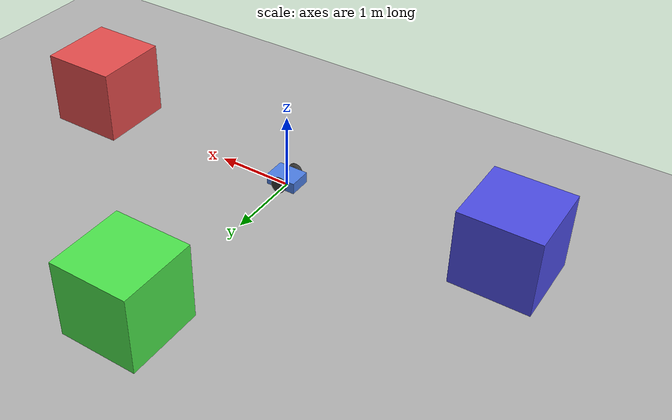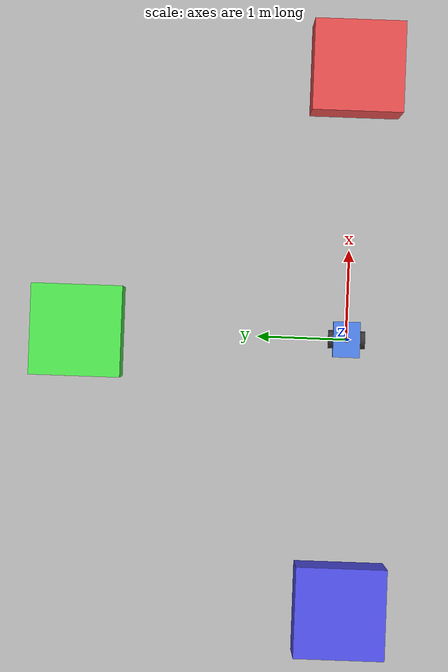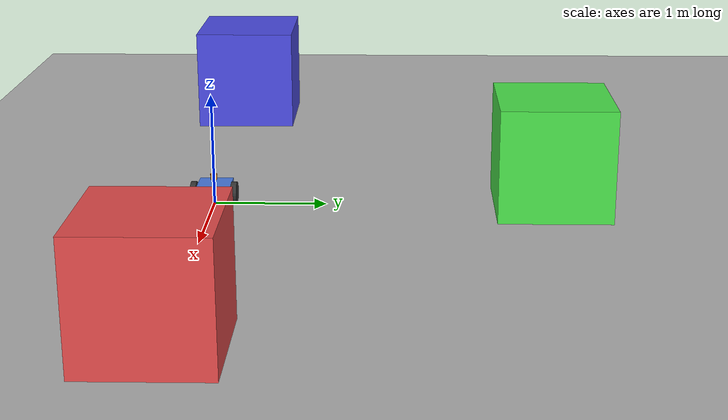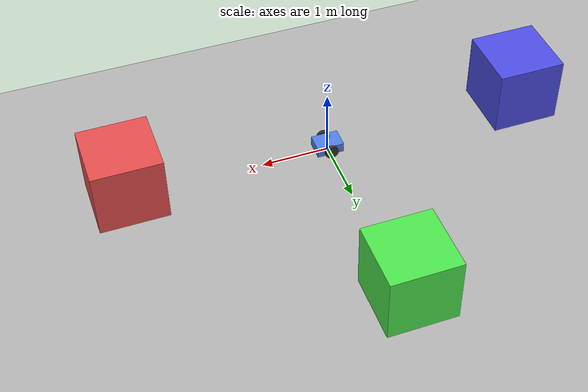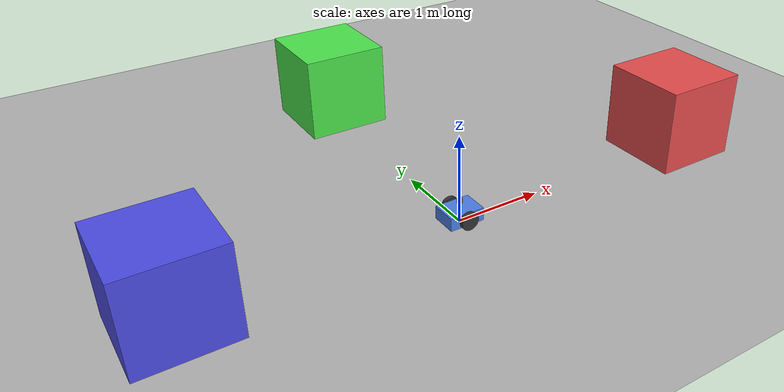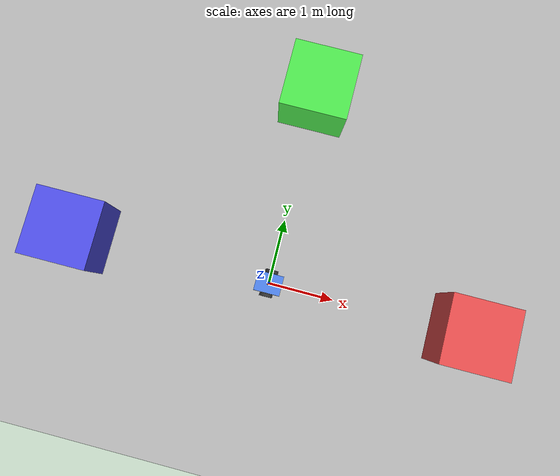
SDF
<?xml version="1.0" ?>
<sdf version="1.8">
  <world name="demo_world">
    <plugin filename="ignition-gazebo-physics-system" name="ignition::gazebo::systems::Physics"/>
    <plugin filename="ignition-gazebo-user-commands-system" name="ignition::gazebo::systems::UserCommands"/>
    <plugin filename="ignition-gazebo-scene-broadcaster-system" name="ignition::gazebo::systems::SceneBroadcaster"/>
    <plugin filename="ignition-gazebo-sensors-system" name="ignition::gazebo::systems::Sensors">
      <render_engine>ogre2</render_engine>
    </plugin>

    <gravity>0 0 -9.8</gravity>

    <light type="directional" name="sun">
      <cast_shadows>true</cast_shadows>
      <pose>0 0 10 0 0 0</pose>
      <diffuse>0.8 0.8 0.8 1</diffuse>
      <specular>0.2 0.2 0.2 1</specular>
      <direction>-0.5 0.1 -0.9</direction>
    </light>

    <model name="ground_plane">
      <static>true</static>
      <link name="link">
        <collision name="collision">
          <geometry>
            <plane>
              <normal>0 0 1</normal>
              <size>20 20</size>
            </plane>
          </geometry>
        </collision>
        <visual name="visual">
          <geometry>
            <plane>
              <normal>0 0 1</normal>
              <size>20 20</size>
            </plane>
          </geometry>
          <material>
            <ambient>0.6 0.6 0.6 1</ambient>
            <diffuse>0.7 0.7 0.7 1</diffuse>
          </material>
        </visual>
      </link>
    </model>

    <!-- 障害物（ナビ視覚化用） -->
    <model name="box1">
      <static>true</static>
      <pose>3 0 0.5 0 0 0</pose>
      <link name="link">
        <collision name="c"><geometry><box><size>1 1 1</size></box></geometry></collision>
        <visual name="v">
          <geometry><box><size>1 1 1</size></box></geometry>
          <material><ambient>0.8 0.2 0.2 1</ambient><diffuse>0.9 0.3 0.3 1</diffuse></material>
        </visual>
      </link>
    </model>
    <model name="box2">
      <static>true</static>
      <pose>0 3 0.5 0 0 0</pose>
      <link name="link">
        <collision name="c"><geometry><box><size>1 1 1</size></box></geometry></collision>
        <visual name="v">
          <geometry><box><size>1 1 1</size></box></geometry>
          <material><ambient>0.2 0.8 0.2 1</ambient><diffuse>0.3 0.9 0.3 1</diffuse></material>
        </visual>
      </link>
    </model>
    <model name="box3">
      <static>true</static>
      <pose>-3 0 0.5 0 0 0</pose>
      <link name="link">
        <collision name="c"><geometry><box><size>1 1 1</size></box></geometry></collision>
        <visual name="v">
          <geometry><box><size>1 1 1</size></box></geometry>
          <material><ambient>0.2 0.2 0.8 1</ambient><diffuse>0.3 0.3 0.9 1</diffuse></material>
        </visual>
      </link>
    </model>

    <!-- ===== シンプルな差動駆動ロボット ===== -->
    <model name="demo_robot" canonical_link="base_link">
      <pose>0 0 0.1 0 0 0</pose>

      <link name="base_link">
        <inertial>
          <mass>5.0</mass>
          <inertia>
            <ixx>0.1</ixx><iyy>0.1</iyy><izz>0.1</izz>
          </inertia>
        </inertial>
        <visual name="body">
          <geometry><box><size>0.4 0.3 0.15</size></box></geometry>
          <material><ambient>0.2 0.4 0.8 1</ambient><diffuse>0.3 0.5 0.9 1</diffuse></material>
        </visual>
        <collision name="body_c">
          <geometry><box><size>0.4 0.3 0.15</size></box></geometry>
        </collision>
      </link>

      <!-- 左ホイール -->
      <link name="left_wheel">
        <pose>0 0.18 0 -1.5707 0 0</pose>
        <inertial>
          <mass>0.5</mass>
          <inertia><ixx>0.001</ixx><iyy>0.001</iyy><izz>0.001</izz></inertia>
        </inertial>
        <visual name="v">
          <geometry><cylinder><radius>0.1</radius><length>0.05</length></cylinder></geometry>
          <material><ambient>0.1 0.1 0.1 1</ambient><diffuse>0.2 0.2 0.2 1</diffuse></material>
        </visual>
        <collision name="c">
          <geometry><cylinder><radius>0.1</radius><length>0.05</length></cylinder></geometry>
          <surface><friction><ode><mu>1.0</mu><mu2>1.0</mu2></ode></friction></surface>
        </collision>
      </link>

      <!-- 右ホイール -->
      <link name="right_wheel">
        <pose>0 -0.18 0 -1.5707 0 0</pose>
        <inertial>
          <mass>0.5</mass>
          <inertia><ixx>0.001</ixx><iyy>0.001</iyy><izz>0.001</izz></inertia>
        </inertial>
        <visual name="v">
          <geometry><cylinder><radius>0.1</radius><length>0.05</length></cylinder></geometry>
          <material><ambient>0.1 0.1 0.1 1</ambient><diffuse>0.2 0.2 0.2 1</diffuse></material>
        </visual>
        <collision name="c">
          <geometry><cylinder><radius>0.1</radius><length>0.05</length></cylinder></geometry>
          <surface><friction><ode><mu>1.0</mu><mu2>1.0</mu2></ode></friction></surface>
        </collision>
      </link>

      <!-- キャスター（前方支持） -->
      <link name="caster">
        <pose>0.15 0 -0.05 0 0 0</pose>
        <inertial>
          <mass>0.1</mass>
          <inertia><ixx>0.0001</ixx><iyy>0.0001</iyy><izz>0.0001</izz></inertia>
        </inertial>
        <visual name="v">
          <geometry><sphere><radius>0.05</radius></sphere></geometry>
          <material><ambient>0.5 0.5 0.5 1</ambient><diffuse>0.6 0.6 0.6 1</diffuse></material>
        </visual>
        <collision name="c">
          <geometry><sphere><radius>0.05</radius></sphere></geometry>
          <surface><friction><ode><mu>0.0</mu><mu2>0.0</mu2></ode></friction></surface>
        </collision>
      </link>

      <!-- ジョイント -->
      <joint name="left_wheel_joint" type="revolute">
        <parent>base_link</parent>
        <child>left_wheel</child>
        <axis><xyz>0 1 0</xyz><limit><lower>-1e16</lower><upper>1e16</upper></limit></axis>
      </joint>
      <joint name="right_wheel_joint" type="revolute">
        <parent>base_link</parent>
        <child>right_wheel</child>
        <axis><xyz>0 1 0</xyz><limit><lower>-1e16</lower><upper>1e16</upper></limit></axis>
      </joint>
      <joint name="caster_joint" type="ball">
        <parent>base_link</parent>
        <child>caster</child>
      </joint>

      <!-- DiffDrive プラグイン（これが鍵） -->
      <plugin filename="ignition-gazebo-diff-drive-system" name="ignition::gazebo::systems::DiffDrive">
        <left_joint>left_wheel_joint</left_joint>
        <right_joint>right_wheel_joint</right_joint>
        <wheel_separation>0.36</wheel_separation>
        <wheel_radius>0.1</wheel_radius>
        <topic>cmd_vel</topic>
        <odom_topic>odom</odom_topic>
        <frame_id>odom</frame_id>
        <child_frame_id>base_link</child_frame_id>
        <odom_publish_frequency>30</odom_publish_frequency>
      </plugin>

      <!-- Joint State Publisher -->
      <plugin filename="ignition-gazebo-joint-state-publisher-system" name="ignition::gazebo::systems::JointStatePublisher">
        <topic>joint_states</topic>
      </plugin>

      <!-- Pose Publisher -->
      <plugin filename="ignition-gazebo-pose-publisher-system" name="ignition::gazebo::systems::PosePublisher">
        <publish_link_pose>true</publish_link_pose>
        <use_pose_vector_msg>true</use_pose_vector_msg>
        <static_publisher>true</static_publisher>
        <static_update_frequency>1</static_update_frequency>
      </plugin>

      <!-- 2D Lidar センサー -->
      <link name="lidar_link">
        <pose>0 0 0.15 0 0 0</pose>
        <inertial>
          <mass>0.1</mass>
          <inertia><ixx>0.0001</ixx><iyy>0.0001</iyy><izz>0.0001</izz></inertia>
        </inertial>
        <visual name="v">
          <geometry><cylinder><radius>0.03</radius><length>0.05</length></cylinder></geometry>
          <material><ambient>0.8 0.4 0.0 1</ambient></material>
        </visual>
        <sensor name="lidar" type="gpu_lidar">
          <topic>scan</topic>
          <update_rate>10</update_rate>
          <ray>
            <scan>
              <horizontal>
                <samples>360</samples>
                <resolution>1</resolution>
                <min_angle>-3.14159</min_angle>
                <max_angle>3.14159</max_angle>
              </horizontal>
            </scan>
            <range>
              <min>0.1</min>
              <max>10.0</max>
              <resolution>0.01</resolution>
            </range>
          </ray>
          <always_on>1</always_on>
          <visualize>true</visualize>
          <gz_frame_id>lidar_link</gz_frame_id>
        </sensor>
      </link>
      <joint name="lidar_joint" type="fixed">
        <parent>base_link</parent>
        <child>lidar_link</child>
      </joint>
    </model>
  </world>
</sdf>
